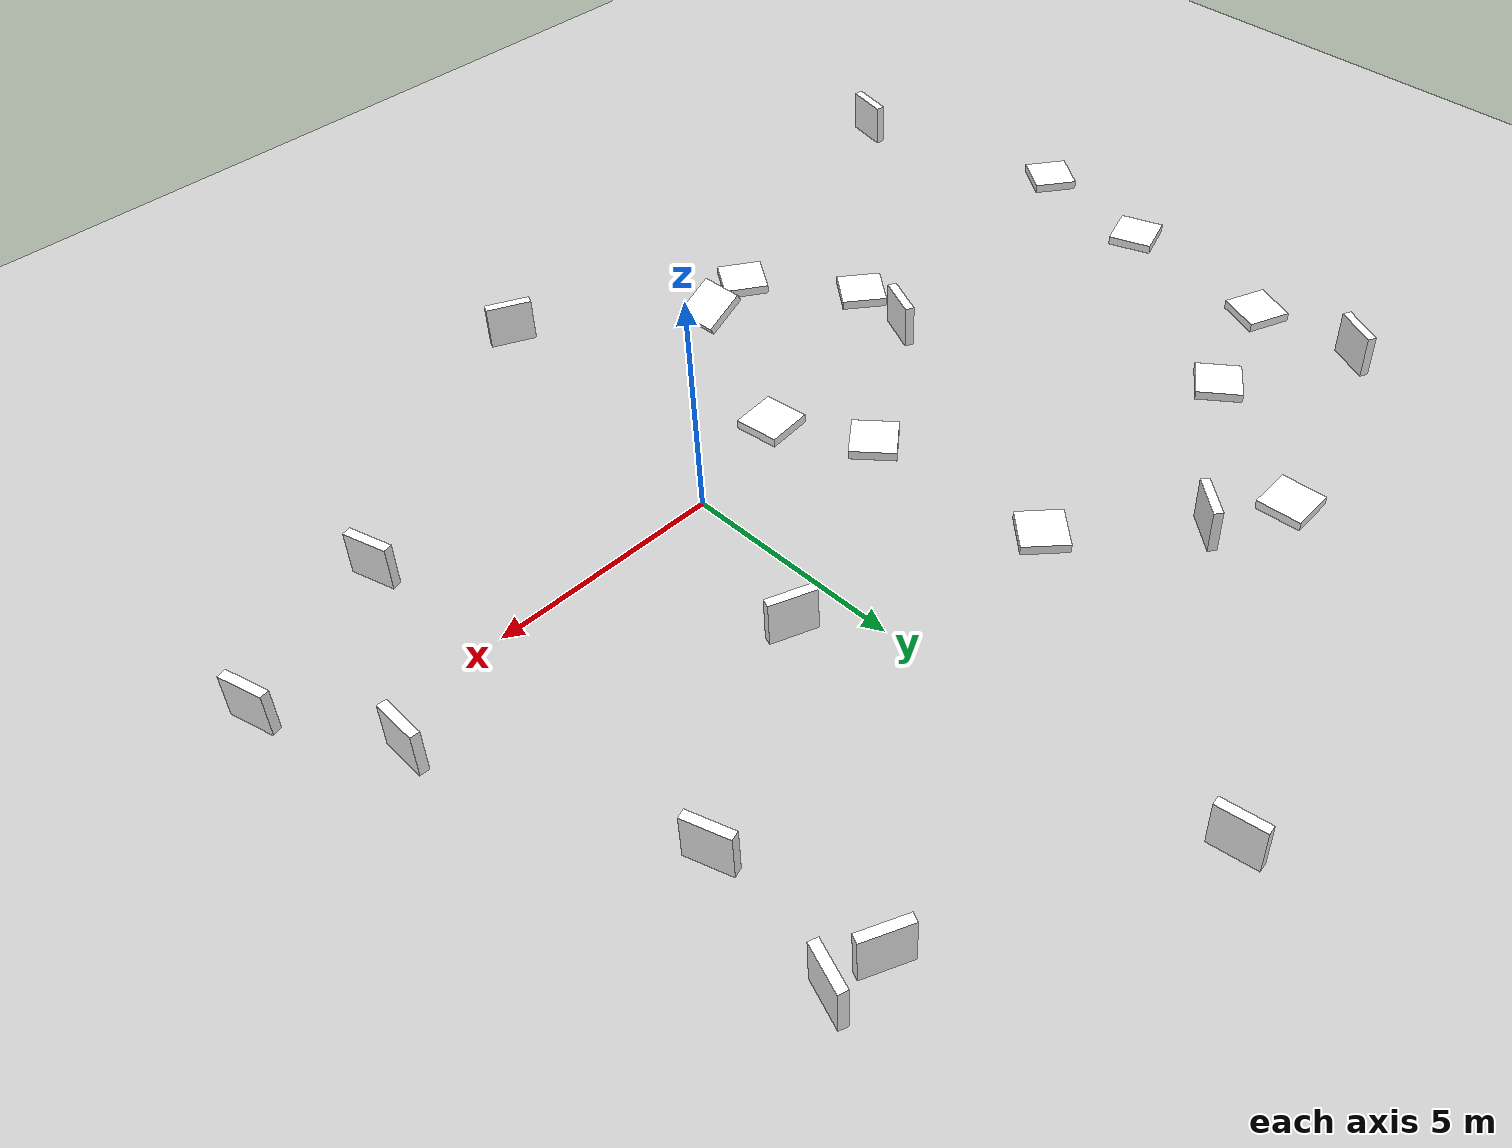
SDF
<sdf version="1.7">
 <world name="default">
  <light name="sun" type="directional">
   <pose>0 0 10 0 -0 0</pose>
   <diffuse>0.8 0.8 0.8 1</diffuse>
   <specular>0.2 0.2 0.2 1</specular>
   <attenuation>
    <range>1000</range>
    <constant>0.9</constant>
    <linear>0.01</linear>
    <quadratic>0.001</quadratic>
   </attenuation>
   <direction>-0.5 0.1 -0.9</direction>
   <spot><inner_angle>0</inner_angle><outer_angle>0</outer_angle><falloff>0</falloff></spot>
  </light>
  <model name="ground_plane">
   <static>1</static>
   <link name="link">
    <collision name="collision">
     <geometry><plane><normal>0 0 1</normal><size>100 100</size></plane></geometry>
     <surface>
      <contact><collide_bitmask>65535</collide_bitmask></contact>
      <friction><ode><mu>100</mu><mu2>50</mu2></ode></friction>
     </surface>
    </collision>
    <visual name="visual">
     <cast_shadows>0</cast_shadows>
     <geometry><plane><normal>0 0 1</normal><size>100 100</size></plane></geometry>
     <material>
      <script><uri>file://media/materials/scripts/gazebo.material</uri><name>Gazebo/Grey</name></script>
     </material>
    </visual>
   </link>
  </model>
  <physics name="default_physics" default="0" type="ode">
   <ode>
    <solver>
     <type>quick</type>
     <iters>10</iters>
     <sor>1.3</sor>
     <use_dynamic_moi_rescaling>0</use_dynamic_moi_rescaling>
    </solver>
    <constraints>
     <cfm>0</cfm>
     <erp>0.2</erp>
     <contact_max_correcting_vel>100</contact_max_correcting_vel>
     <contact_surface_layer>0.001</contact_surface_layer>
    </constraints>
   </ode>
   <max_step_size>0.004</max_step_size>
   <real_time_factor>1</real_time_factor>
   <real_time_update_rate>250</real_time_update_rate>
  </physics>
  <gravity>0 0 -9.8066</gravity>
  <magnetic_field>6e-06 2.3e-05 -4.2e-05</magnetic_field>
  <atmosphere type="adiabatic"/>
  <scene><ambient>0.4 0.4 0.4 1</ambient><background>0.7 0.7 0.7 1</background><shadows>1</shadows></scene>
  <spherical_coordinates>
   <surface_model>EARTH_WGS84</surface_model>
   <latitude_deg>0</latitude_deg>
   <longitude_deg>0</longitude_deg>
   <elevation>0</elevation>
   <heading_deg>0</heading_deg>
  </spherical_coordinates>
  <model name="aruco_marker1_clone">
   <link name="marker">
    <visual name="visual">
     <geometry><box><size>1 0.2 1</size></box></geometry>
     <material>
      <script>
       <uri>model://aruco_marker1/materials/scripts</uri>
       <uri>model://aruco_marker1/materials/textures</uri>
       <name>arucomarker1/Marker</name>
      </script>
      <ambient>1 1 1 1</ambient>
      <diffuse>1 1 1 1</diffuse>
      <specular>0 0 0 1</specular>
      <emissive>1 1 1 0</emissive>
      <shader type="vertex"><normal_map>__default__</normal_map></shader>
     </material>
    </visual>
    <collision name="collision"><geometry><box><size>1.2 0.8 1</size></box></geometry></collision>
    <inertial>
     <inertia><ixx>1</ixx><ixy>0</ixy><ixz>0</ixz><iyy>1</iyy><iyz>0</iyz><izz>1</izz></inertia>
     <mass>1</mass>
    </inertial>
   </link>
   <pose>6.10823 9.53689 0.499957 -2.5e-05 5.5e-05 1.24237</pose>
  </model>
  <model name="aruco_marker1_clone_0">
   <link name="marker">
    <visual name="visual">
     <geometry><box><size>1 0.2 1</size></box></geometry>
     <material>
      <script>
       <uri>model://aruco_marker1/materials/scripts</uri>
       <uri>model://aruco_marker1/materials/textures</uri>
       <name>arucomarker1/Marker</name>
      </script>
      <ambient>1 1 1 1</ambient>
      <diffuse>1 1 1 1</diffuse>
      <specular>0 0 0 1</specular>
      <emissive>1 1 1 0</emissive>
      <shader type="vertex"><normal_map>__default__</normal_map></shader>
     </material>
    </visual>
    <collision name="collision"><geometry><box><size>1.2 0.8 1</size></box></geometry></collision>
    <inertial>
     <inertia><ixx>1</ixx><ixy>0</ixy><ixz>0</ixz><iyy>1</iyy><iyz>0</iyz><izz>1</izz></inertia>
     <mass>1</mass>
    </inertial>
   </link>
   <pose>5.63001 6.39163 0.499969 -3.14158 4.3e-05 -1.26046</pose>
  </model>
  <model name="aruco_marker1_clone_2">
   <link name="marker">
    <visual name="visual">
     <geometry><box><size>1 0.2 1</size></box></geometry>
     <material>
      <script>
       <uri>model://aruco_marker1/materials/scripts</uri>
       <uri>model://aruco_marker1/materials/textures</uri>
       <name>arucomarker1/Marker</name>
      </script>
      <ambient>1 1 1 1</ambient>
      <diffuse>1 1 1 1</diffuse>
      <specular>0 0 0 1</specular>
      <emissive>1 1 1 0</emissive>
      <shader type="vertex"><normal_map>__default__</normal_map></shader>
     </material>
    </visual>
    <collision name="collision"><geometry><box><size>1.2 0.8 1</size></box></geometry></collision>
    <inertial>
     <inertia><ixx>1</ixx><ixy>0</ixy><ixz>0</ixz><iyy>1</iyy><iyz>0</iyz><izz>1</izz></inertia>
     <mass>1</mass>
    </inertial>
   </link>
   <pose>9.15669 -1.5731 0.500006 1.5e-05 1e-06 1.83101</pose>
  </model>
  <model name="aruco_marker1_clone_3">
   <link name="marker">
    <visual name="visual">
     <geometry><box><size>1 0.2 1</size></box></geometry>
     <material>
      <script>
       <uri>model://aruco_marker1/materials/scripts</uri>
       <uri>model://aruco_marker1/materials/textures</uri>
       <name>arucomarker1/Marker</name>
      </script>
      <ambient>1 1 1 1</ambient>
      <diffuse>1 1 1 1</diffuse>
      <specular>0 0 0 1</specular>
      <emissive>1 1 1 0</emissive>
      <shader type="vertex"><normal_map>__default__</normal_map></shader>
     </material>
    </visual>
    <collision name="collision"><geometry><box><size>1.2 0.8 1</size></box></geometry></collision>
    <inertial>
     <inertia><ixx>1</ixx><ixy>0</ixy><ixz>0</ixz><iyy>1</iyy><iyz>0</iyz><izz>1</izz></inertia>
     <mass>1</mass>
    </inertial>
   </link>
   <pose>5.66937 -3.02607 0.5 1e-06 -0 1.84699</pose>
  </model>
  <model name="aruco_marker1_clone_4">
   <link name="marker">
    <visual name="visual">
     <geometry><box><size>1 0.2 1</size></box></geometry>
     <material>
      <script>
       <uri>model://aruco_marker1/materials/scripts</uri>
       <uri>model://aruco_marker1/materials/textures</uri>
       <name>arucomarker1/Marker</name>
      </script>
      <ambient>1 1 1 1</ambient>
      <diffuse>1 1 1 1</diffuse>
      <specular>0 0 0 1</specular>
      <emissive>1 1 1 0</emissive>
      <shader type="vertex"><normal_map>__default__</normal_map></shader>
     </material>
    </visual>
    <collision name="collision"><geometry><box><size>1.2 0.8 1</size></box></geometry></collision>
    <inertial>
     <inertia><ixx>1</ixx><ixy>0</ixy><ixz>0</ixz><iyy>1</iyy><iyz>0</iyz><izz>1</izz></inertia>
     <mass>1</mass>
    </inertial>
   </link>
   <pose>-0.316316 12.5029 0.599968 -2.59973 1.57075 -0.898367</pose>
  </model>
  <model name="aruco_marker1_clone_5">
   <link name="marker">
    <visual name="visual">
     <geometry><box><size>1 0.2 1</size></box></geometry>
     <material>
      <script>
       <uri>model://aruco_marker1/materials/scripts</uri>
       <uri>model://aruco_marker1/materials/textures</uri>
       <name>arucomarker1/Marker</name>
      </script>
      <ambient>1 1 1 1</ambient>
      <diffuse>1 1 1 1</diffuse>
      <specular>0 0 0 1</specular>
      <emissive>1 1 1 0</emissive>
      <shader type="vertex"><normal_map>__default__</normal_map></shader>
     </material>
    </visual>
    <collision name="collision"><geometry><box><size>1.2 0.8 1</size></box></geometry></collision>
    <inertial>
     <inertia><ixx>1</ixx><ixy>0</ixy><ixz>0</ixz><iyy>1</iyy><iyz>0</iyz><izz>1</izz></inertia>
     <mass>1</mass>
    </inertial>
   </link>
   <pose>-3.7304 5.68266 0.4 1.5708 -0 -2.31569</pose>
  </model>
  <model name="aruco_marker1_clone_6">
   <link name="marker">
    <visual name="visual">
     <geometry><box><size>1 0.2 1</size></box></geometry>
     <material>
      <script>
       <uri>model://aruco_marker1/materials/scripts</uri>
       <uri>model://aruco_marker1/materials/textures</uri>
       <name>arucomarker1/Marker</name>
      </script>
      <ambient>1 1 1 1</ambient>
      <diffuse>1 1 1 1</diffuse>
      <specular>0 0 0 1</specular>
      <emissive>1 1 1 0</emissive>
      <shader type="vertex"><normal_map>__default__</normal_map></shader>
     </material>
    </visual>
    <collision name="collision"><geometry><box><size>1.2 0.8 1</size></box></geometry></collision>
    <inertial>
     <inertia><ixx>1</ixx><ixy>0</ixy><ixz>0</ixz><iyy>1</iyy><iyz>0</iyz><izz>1</izz></inertia>
     <mass>1</mass>
    </inertial>
   </link>
   <pose>1.25379 3.83627 0.599968 2.59946 1.57075 -0.907838</pose>
  </model>
  <model name="aruco_marker1_clone_7">
   <link name="marker">
    <visual name="visual">
     <geometry><box><size>1 0.2 1</size></box></geometry>
     <material>
      <script>
       <uri>model://aruco_marker1/materials/scripts</uri>
       <uri>model://aruco_marker1/materials/textures</uri>
       <name>arucomarker1/Marker</name>
      </script>
      <ambient>1 1 1 1</ambient>
      <diffuse>1 1 1 1</diffuse>
      <specular>0 0 0 1</specular>
      <emissive>1 1 1 0</emissive>
      <shader type="vertex"><normal_map>__default__</normal_map></shader>
     </material>
    </visual>
    <collision name="collision"><geometry><box><size>1.2 0.8 1</size></box></geometry></collision>
    <inertial>
     <inertia><ixx>1</ixx><ixy>0</ixy><ixz>0</ixz><iyy>1</iyy><iyz>0</iyz><izz>1</izz></inertia>
     <mass>1</mass>
    </inertial>
   </link>
   <pose>-2.41588 -0.488042 0.4 1.5708 -0 -3.03503</pose>
  </model>
  <model name="aruco_marker1_clone_8">
   <link name="marker">
    <visual name="visual">
     <geometry><box><size>1 0.2 1</size></box></geometry>
     <material>
      <script>
       <uri>model://aruco_marker1/materials/scripts</uri>
       <uri>model://aruco_marker1/materials/textures</uri>
       <name>arucomarker1/Marker</name>
      </script>
      <ambient>1 1 1 1</ambient>
      <diffuse>1 1 1 1</diffuse>
      <specular>0 0 0 1</specular>
      <emissive>1 1 1 0</emissive>
      <shader type="vertex"><normal_map>__default__</normal_map></shader>
     </material>
    </visual>
    <collision name="collision"><geometry><box><size>1.2 0.8 1</size></box></geometry></collision>
    <inertial>
     <inertia><ixx>1</ixx><ixy>0</ixy><ixz>0</ixz><iyy>1</iyy><iyz>0</iyz><izz>1</izz></inertia>
     <mass>1</mass>
    </inertial>
   </link>
   <pose>-4.09419 -4.19512 0.585939 -2.05188 3.1e-05 -1.53311</pose>
  </model>
  <model name="aruco_marker1_clone_9">
   <link name="marker">
    <visual name="visual">
     <geometry><box><size>1 0.2 1</size></box></geometry>
     <material>
      <script>
       <uri>model://aruco_marker1/materials/scripts</uri>
       <uri>model://aruco_marker1/materials/textures</uri>
       <name>arucomarker1/Marker</name>
      </script>
      <ambient>1 1 1 1</ambient>
      <diffuse>1 1 1 1</diffuse>
      <specular>0 0 0 1</specular>
      <emissive>1 1 1 0</emissive>
      <shader type="vertex"><normal_map>__default__</normal_map></shader>
     </material>
    </visual>
    <collision name="collision"><geometry><box><size>1.2 0.8 1</size></box></geometry></collision>
    <inertial>
     <inertia><ixx>1</ixx><ixy>0</ixy><ixz>0</ixz><iyy>1</iyy><iyz>0</iyz><izz>1</izz></inertia>
     <mass>1</mass>
    </inertial>
   </link>
   <pose>-0.708566 -7.07454 0.499958 3.14159 6.9e-05 2.70092</pose>
  </model>
  <model name="aruco_marker1_clone_10">
   <link name="marker">
    <visual name="visual">
     <geometry><box><size>1 0.2 1</size></box></geometry>
     <material>
      <script>
       <uri>model://aruco_marker1/materials/scripts</uri>
       <uri>model://aruco_marker1/materials/textures</uri>
       <name>arucomarker1/Marker</name>
      </script>
      <ambient>1 1 1 1</ambient>
      <diffuse>1 1 1 1</diffuse>
      <specular>0 0 0 1</specular>
      <emissive>1 1 1 0</emissive>
      <shader type="vertex"><normal_map>__default__</normal_map></shader>
     </material>
    </visual>
    <collision name="collision"><geometry><box><size>1.2 0.8 1</size></box></geometry></collision>
    <inertial>
     <inertia><ixx>1</ixx><ixy>0</ixy><ixz>0</ixz><iyy>1</iyy><iyz>0</iyz><izz>1</izz></inertia>
     <mass>1</mass>
    </inertial>
   </link>
   <pose>-5.46309 -4.59274 0.399981 1.5708 2.3e-05 0.993296</pose>
  </model>
  <model name="aruco_marker1_clone_11">
   <link name="marker">
    <visual name="visual">
     <geometry><box><size>1 0.2 1</size></box></geometry>
     <material>
      <script>
       <uri>model://aruco_marker1/materials/scripts</uri>
       <uri>model://aruco_marker1/materials/textures</uri>
       <name>arucomarker1/Marker</name>
      </script>
      <ambient>1 1 1 1</ambient>
      <diffuse>1 1 1 1</diffuse>
      <specular>0 0 0 1</specular>
      <emissive>1 1 1 0</emissive>
      <shader type="vertex"><normal_map>__default__</normal_map></shader>
     </material>
    </visual>
    <collision name="collision"><geometry><box><size>1.2 0.8 1</size></box></geometry></collision>
    <inertial>
     <inertia><ixx>1</ixx><ixy>0</ixy><ixz>0</ixz><iyy>1</iyy><iyz>0</iyz><izz>1</izz></inertia>
     <mass>1</mass>
    </inertial>
   </link>
   <pose>-7.03605 -2.29988 0.39998 -1.5708 3.3e-05 0.91225</pose>
  </model>
  <model name="aruco_marker1_clone_13">
   <link name="marker">
    <visual name="visual">
     <geometry><box><size>1 0.2 1</size></box></geometry>
     <material>
      <script>
       <uri>model://aruco_marker1/materials/scripts</uri>
       <uri>model://aruco_marker1/materials/textures</uri>
       <name>arucomarker1/Marker</name>
      </script>
      <ambient>1 1 1 1</ambient>
      <diffuse>1 1 1 1</diffuse>
      <specular>0 0 0 1</specular>
      <emissive>1 1 1 0</emissive>
      <shader type="vertex"><normal_map>__default__</normal_map></shader>
     </material>
    </visual>
    <collision name="collision"><geometry><box><size>1.2 0.8 1</size></box></geometry></collision>
    <inertial>
     <inertia><ixx>1</ixx><ixy>0</ixy><ixz>0</ixz><iyy>1</iyy><iyz>0</iyz><izz>1</izz></inertia>
     <mass>1</mass>
    </inertial>
   </link>
   <pose>-3.4554 1.46869 0.39998 1.5708 -3.3e-05 -2.44865</pose>
  </model>
  <model name="aruco_marker1_clone_14">
   <link name="marker">
    <visual name="visual">
     <geometry><box><size>1 0.2 1</size></box></geometry>
     <material>
      <script>
       <uri>model://aruco_marker1/materials/scripts</uri>
       <uri>model://aruco_marker1/materials/textures</uri>
       <name>arucomarker1/Marker</name>
      </script>
      <ambient>1 1 1 1</ambient>
      <diffuse>1 1 1 1</diffuse>
      <specular>0 0 0 1</specular>
      <emissive>1 1 1 0</emissive>
      <shader type="vertex"><normal_map>__default__</normal_map></shader>
     </material>
    </visual>
    <collision name="collision"><geometry><box><size>1.2 0.8 1</size></box></geometry></collision>
    <inertial>
     <inertia><ixx>1</ixx><ixy>0</ixy><ixz>0</ixz><iyy>1</iyy><iyz>0</iyz><izz>1</izz></inertia>
     <mass>1</mass>
    </inertial>
   </link>
   <pose>-6.2521 7.79864 0.500001 -3.14159 1e-06 -2.27048</pose>
  </model>
  <model name="aruco_marker1_clone_15">
   <link name="marker">
    <visual name="visual">
     <geometry><box><size>1 0.2 1</size></box></geometry>
     <material>
      <script>
       <uri>model://aruco_marker1/materials/scripts</uri>
       <uri>model://aruco_marker1/materials/textures</uri>
       <name>arucomarker1/Marker</name>
      </script>
      <ambient>1 1 1 1</ambient>
      <diffuse>1 1 1 1</diffuse>
      <specular>0 0 0 1</specular>
      <emissive>1 1 1 0</emissive>
      <shader type="vertex"><normal_map>__default__</normal_map></shader>
     </material>
    </visual>
    <collision name="collision"><geometry><box><size>1.2 0.8 1</size></box></geometry></collision>
    <inertial>
     <inertia><ixx>1</ixx><ixy>0</ixy><ixz>0</ixz><iyy>1</iyy><iyz>0</iyz><izz>1</izz></inertia>
     <mass>1</mass>
    </inertial>
   </link>
   <pose>-7.7559 8.72546 0.399983 1.5708 2.9e-05 -1.52984</pose>
  </model>
  <model name="aruco_marker1_clone_18">
   <link name="marker">
    <visual name="visual">
     <geometry><box><size>1 0.2 1</size></box></geometry>
     <material>
      <script>
       <uri>model://aruco_marker1/materials/scripts</uri>
       <uri>model://aruco_marker1/materials/textures</uri>
       <name>arucomarker1/Marker</name>
      </script>
      <ambient>1 1 1 1</ambient>
      <diffuse>1 1 1 1</diffuse>
      <specular>0 0 0 1</specular>
      <emissive>1 1 1 0</emissive>
      <shader type="vertex"><normal_map>__default__</normal_map></shader>
     </material>
    </visual>
    <collision name="collision"><geometry><box><size>1.2 0.8 1</size></box></geometry></collision>
    <inertial>
     <inertia><ixx>1</ixx><ixy>0</ixy><ixz>0</ixz><iyy>1</iyy><iyz>0</iyz><izz>1</izz></inertia>
     <mass>1</mass>
    </inertial>
   </link>
   <pose>-9.90154 5.5327 0.39998 1.5708 3.3e-05 -2.50692</pose>
  </model>
  <model name="aruco_marker1_clone_20">
   <link name="marker">
    <visual name="visual">
     <geometry><box><size>1 0.2 1</size></box></geometry>
     <material>
      <script>
       <uri>model://aruco_marker1/materials/scripts</uri>
       <uri>model://aruco_marker1/materials/textures</uri>
       <name>arucomarker1/Marker</name>
      </script>
      <ambient>1 1 1 1</ambient>
      <diffuse>1 1 1 1</diffuse>
      <specular>0 0 0 1</specular>
      <emissive>1 1 1 0</emissive>
      <shader type="vertex"><normal_map>__default__</normal_map></shader>
     </material>
    </visual>
    <collision name="collision"><geometry><box><size>1.2 0.8 1</size></box></geometry></collision>
    <inertial>
     <inertia><ixx>1</ixx><ixy>0</ixy><ixz>0</ixz><iyy>1</iyy><iyz>0</iyz><izz>1</izz></inertia>
     <mass>1</mass>
    </inertial>
   </link>
   <pose>-13.8129 -2.21868 0.39998 -1.5708 -3.3e-05 0.953112</pose>
  </model>
  <model name="aruco_marker1_clone_25">
   <link name="marker">
    <visual name="visual">
     <geometry><box><size>1 0.2 1</size></box></geometry>
     <material>
      <script>
       <uri>model://aruco_marker1/materials/scripts</uri>
       <uri>model://aruco_marker1/materials/textures</uri>
       <name>arucomarker1/Marker</name>
      </script>
      <ambient>1 1 1 1</ambient>
      <diffuse>1 1 1 1</diffuse>
      <specular>0 0 0 1</specular>
      <emissive>1 1 1 0</emissive>
      <shader type="vertex"><normal_map>__default__</normal_map></shader>
     </material>
    </visual>
    <collision name="collision"><geometry><box><size>1.2 0.8 1</size></box></geometry></collision>
    <inertial>
     <inertia><ixx>1</ixx><ixy>0</ixy><ixz>0</ixz><iyy>1</iyy><iyz>0</iyz><izz>1</izz></inertia>
     <mass>1</mass>
    </inertial>
   </link>
   <pose>-13.2154 0.876023 0.39998 -1.5708 -3.3e-05 0.331308</pose>
  </model>
  <model name="aruco_marker1_clone_27">
   <link name="marker">
    <visual name="visual">
     <geometry><box><size>1 0.2 1</size></box></geometry>
     <material>
      <script>
       <uri>model://aruco_marker1/materials/scripts</uri>
       <uri>model://aruco_marker1/materials/textures</uri>
       <name>arucomarker1/Marker</name>
      </script>
      <ambient>1 1 1 1</ambient>
      <diffuse>1 1 1 1</diffuse>
      <specular>0 0 0 1</specular>
      <emissive>1 1 1 0</emissive>
      <shader type="vertex"><normal_map>__default__</normal_map></shader>
     </material>
    </visual>
    <collision name="collision"><geometry><box><size>1.2 0.8 1</size></box></geometry></collision>
    <inertial>
     <inertia><ixx>1</ixx><ixy>0</ixy><ixz>0</ixz><iyy>1</iyy><iyz>0</iyz><izz>1</izz></inertia>
     <mass>1</mass>
    </inertial>
   </link>
   <pose>-12.6783 -7.38462 0.499956 -3.14157 5.5e-05 -1.77052</pose>
  </model>
  <model name="aruco_marker1_clone_17_clone">
   <link name="marker">
    <visual name="visual">
     <geometry><box><size>1 0.2 1</size></box></geometry>
     <material>
      <script>
       <uri>model://aruco_marker1/materials/scripts</uri>
       <uri>model://aruco_marker1/materials/textures</uri>
       <name>arucomarker1/Marker</name>
      </script>
      <ambient>1 1 1 1</ambient>
      <diffuse>1 1 1 1</diffuse>
      <specular>0 0 0 1</specular>
      <emissive>1 1 1 0</emissive>
      <shader type="vertex"><normal_map>__default__</normal_map></shader>
     </material>
    </visual>
    <collision name="collision"><geometry><box><size>1.2 0.8 1</size></box></geometry></collision>
    <inertial>
     <inertia><ixx>1</ixx><ixy>0</ixy><ixz>0</ixz><iyy>1</iyy><iyz>0</iyz><izz>1</izz></inertia>
     <mass>1</mass>
    </inertial>
   </link>
   <pose>-12.8366 7.06431 0.599968 -2.59871 -1.57075 -2.5735</pose>
  </model>
  <model name="aruco_marker1_clone_clone">
   <link name="marker">
    <visual name="visual">
     <geometry><box><size>1 0.2 1</size></box></geometry>
     <material>
      <script>
       <uri>model://aruco_marker1/materials/scripts</uri>
       <uri>model://aruco_marker1/materials/textures</uri>
       <name>arucomarker1/Marker</name>
      </script>
      <ambient>1 1 1 1</ambient>
      <diffuse>1 1 1 1</diffuse>
      <specular>0 0 0 1</specular>
      <emissive>1 1 1 0</emissive>
      <shader type="vertex"><normal_map>__default__</normal_map></shader>
     </material>
    </visual>
    <collision name="collision"><geometry><box><size>1.2 0.8 1</size></box></geometry></collision>
    <inertial>
     <inertia><ixx>1</ixx><ixy>0</ixy><ixz>0</ixz><iyy>1</iyy><iyz>0</iyz><izz>1</izz></inertia>
     <mass>1</mass>
    </inertial>
   </link>
   <pose>5.1069 9.76162 0.599968 0.542553 -1.57075 2.17274</pose>
  </model>
  <model name="aruco_marker1_clone_clone_0">
   <link name="marker">
    <visual name="visual">
     <geometry><box><size>1 0.2 1</size></box></geometry>
     <material>
      <script>
       <uri>model://aruco_marker1/materials/scripts</uri>
       <uri>model://aruco_marker1/materials/textures</uri>
       <name>arucomarker1/Marker</name>
      </script>
      <ambient>1 1 1 1</ambient>
      <diffuse>1 1 1 1</diffuse>
      <specular>0 0 0 1</specular>
      <emissive>1 1 1 0</emissive>
      <shader type="vertex"><normal_map>__default__</normal_map></shader>
     </material>
    </visual>
    <collision name="collision"><geometry><box><size>1.2 0.8 1</size></box></geometry></collision>
    <inertial>
     <inertia><ixx>1</ixx><ixy>0</ixy><ixz>0</ixz><iyy>1</iyy><iyz>0</iyz><izz>1</izz></inertia>
     <mass>1</mass>
    </inertial>
   </link>
   <pose>7.80274 1.09105 0.599968 2.59909 1.57075 1.00802</pose>
  </model>
  <model name="aruco_marker1_clone_11_clone">
   <link name="marker">
    <visual name="visual">
     <geometry><box><size>1 0.2 1</size></box></geometry>
     <material>
      <script>
       <uri>model://aruco_marker1/materials/scripts</uri>
       <uri>model://aruco_marker1/materials/textures</uri>
       <name>arucomarker1/Marker</name>
      </script>
      <ambient>1 1 1 1</ambient>
      <diffuse>1 1 1 1</diffuse>
      <specular>0 0 0 1</specular>
      <emissive>1 1 1 0</emissive>
      <shader type="vertex"><normal_map>__default__</normal_map></shader>
     </material>
    </visual>
    <collision name="collision"><geometry><box><size>1.2 0.8 1</size></box></geometry></collision>
    <inertial>
     <inertia><ixx>1</ixx><ixy>0</ixy><ixz>0</ixz><iyy>1</iyy><iyz>0</iyz><izz>1</izz></inertia>
     <mass>1</mass>
    </inertial>
   </link>
   <pose>-6.79653 -0.865821 0.600005 -3.05006 -1.57079 -2.08287</pose>
  </model>
  <model name="aruco_marker1_clone_17_clone_clone">
   <link name="marker">
    <visual name="visual">
     <geometry><box><size>1 0.2 1</size></box></geometry>
     <material>
      <script>
       <uri>model://aruco_marker1/materials/scripts</uri>
       <uri>model://aruco_marker1/materials/textures</uri>
       <name>arucomarker1/Marker</name>
      </script>
      <ambient>1 1 1 1</ambient>
      <diffuse>1 1 1 1</diffuse>
      <specular>0 0 0 1</specular>
      <emissive>1 1 1 0</emissive>
      <shader type="vertex"><normal_map>__default__</normal_map></shader>
     </material>
    </visual>
    <collision name="collision"><geometry><box><size>1.2 0.8 1</size></box></geometry></collision>
    <inertial>
     <inertia><ixx>1</ixx><ixy>0</ixy><ixz>0</ixz><iyy>1</iyy><iyz>0</iyz><izz>1</izz></inertia>
     <mass>1</mass>
    </inertial>
   </link>
   <pose>-12.6307 4.68089 0.4 -1.5708 -0 1.19209</pose>
  </model>
 </world>
</sdf>
